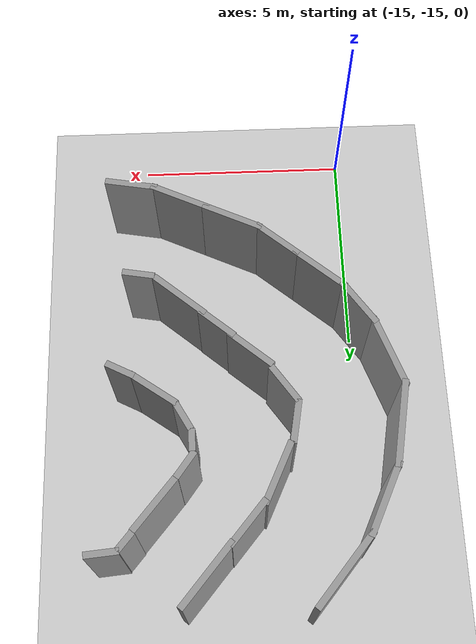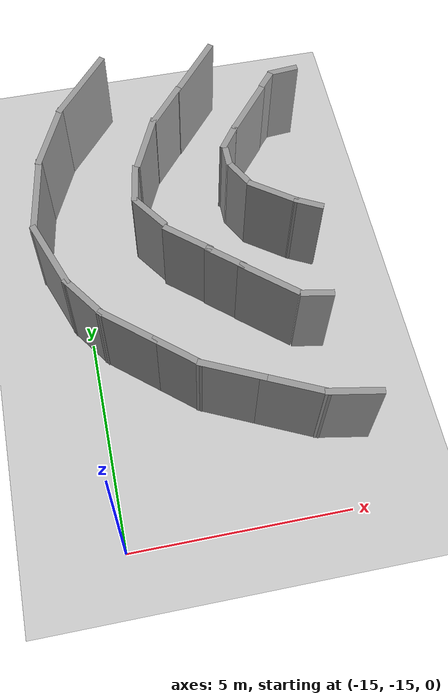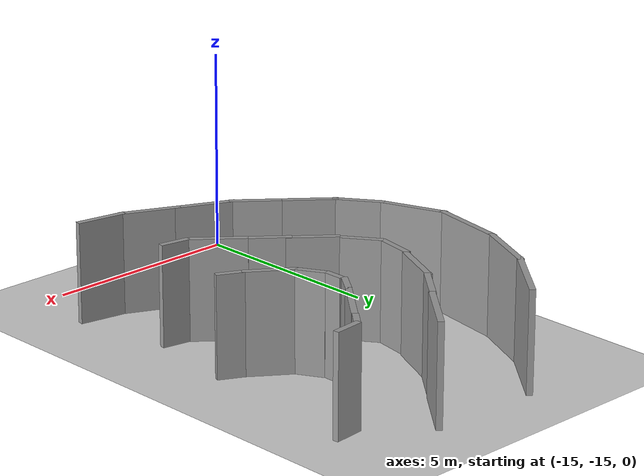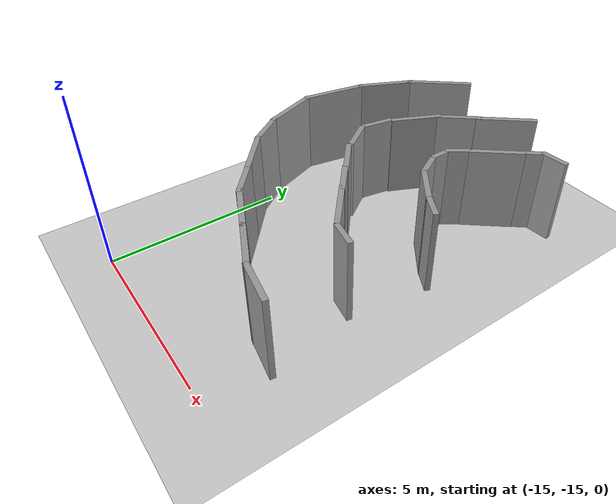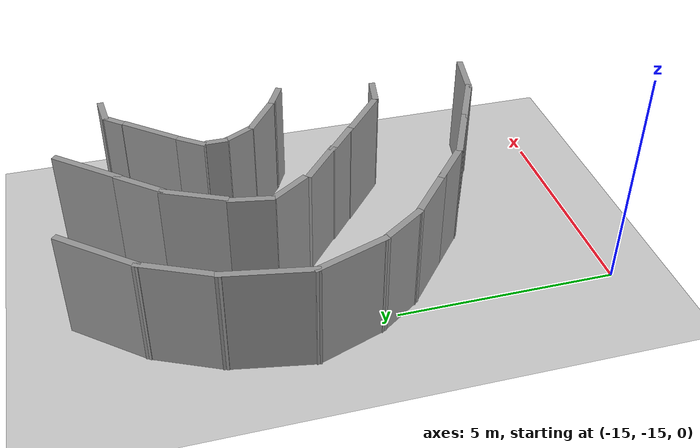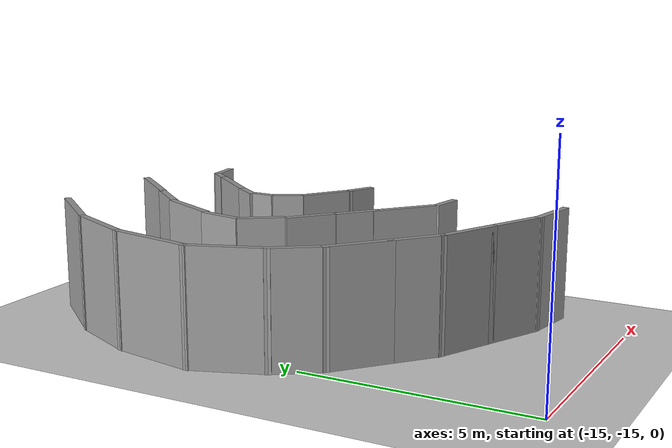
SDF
<sdf version="1.6">
 <world name="default">
  <model name="ground_plane">
   <static>1</static>
   <link name="link">
    <collision name="collision">
     <geometry><plane><normal>0 0 1</normal><size>100 100</size></plane></geometry>
     <surface><friction><ode><mu>100</mu><mu2>50</mu2></ode></friction></surface>
    </collision>
    <visual name="visual">
     <cast_shadows>0</cast_shadows>
     <geometry><plane><normal>0 0 1</normal><size>100 100</size></plane></geometry>
     <material>
      <script><uri>file://media/materials/scripts/gazebo.material</uri><name>Gazebo/Grey</name></script>
     </material>
    </visual>
   </link>
  </model>
  <model name="c-Snail_v3_clone">
   <link name="Wall_25">
    <pose>9.3253 -3.61638 0 0 -0 1.0472</pose>
    <visual name="Wall_25_Visual">
     <pose>0 0 1.25 0 -0 0</pose>
     <geometry><box><size>1.25 0.15 2.5</size></box></geometry>
     <material>
      <script><uri>file://media/materials/scripts/gazebo.material</uri><name>Gazebo/Grey</name></script>
      <ambient>1 1 1 1</ambient>
     </material>
     <meta><layer>0</layer></meta>
    </visual>
    <collision name="Wall_25_Collision">
     <pose>0 0 1.25 0 -0 0</pose>
     <geometry><box><size>1.25 0.15 2.5</size></box></geometry>
     <surface>
      <friction>
       <ode><mu>1</mu><mu2>1</mu2><fdir1>0 0 0</fdir1><slip1>0</slip1><slip2>0</slip2></ode>
       <torsional>
        <coefficient>1</coefficient>
        <patch_radius>0</patch_radius>
        <surface_radius>0</surface_radius>
        <use_patch_radius>1</use_patch_radius>
        <ode><slip>0</slip></ode>
       </torsional>
      </friction>
      <bounce><restitution_coefficient>0</restitution_coefficient><threshold>1e+06</threshold></bounce>
      <contact>
       <collide_without_contact>0</collide_without_contact>
       <collide_without_contact_bitmask>1</collide_without_contact_bitmask>
       <collide_bitmask>1</collide_bitmask>
       <ode>
        <soft_cfm>0</soft_cfm>
        <soft_erp>0.2</soft_erp>
        <kp>1e+13</kp>
        <kd>1</kd>
        <max_vel>0.01</max_vel>
        <min_depth>0</min_depth>
       </ode>
       <bullet>
        <split_impulse>1</split_impulse>
        <split_impulse_penetration_threshold>-0.01</split_impulse_penetration_threshold>
        <soft_cfm>0</soft_cfm>
        <soft_erp>0.2</soft_erp>
        <kp>1e+13</kp>
        <kd>1</kd>
       </bullet>
      </contact>
     </surface>
    </collision>
   </link>
   <link name="Wall_26">
    <pose>9.775 -2.48806 0 0 -0 1.309</pose>
    <visual name="Wall_26_Visual">
     <pose>0 0 1.25 0 -0 0</pose>
     <geometry><box><size>1.5 0.15 2.5</size></box></geometry>
     <material>
      <script><uri>file://media/materials/scripts/gazebo.material</uri><name>Gazebo/Grey</name></script>
      <ambient>1 1 1 1</ambient>
     </material>
     <meta><layer>0</layer></meta>
    </visual>
    <collision name="Wall_26_Collision">
     <pose>0 0 1.25 0 -0 0</pose>
     <geometry><box><size>1.5 0.15 2.5</size></box></geometry>
     <surface>
      <friction>
       <ode><mu>1</mu><mu2>1</mu2><fdir1>0 0 0</fdir1><slip1>0</slip1><slip2>0</slip2></ode>
       <torsional>
        <coefficient>1</coefficient>
        <patch_radius>0</patch_radius>
        <surface_radius>0</surface_radius>
        <use_patch_radius>1</use_patch_radius>
        <ode><slip>0</slip></ode>
       </torsional>
      </friction>
      <bounce><restitution_coefficient>0</restitution_coefficient><threshold>1e+06</threshold></bounce>
      <contact>
       <collide_without_contact>0</collide_without_contact>
       <collide_without_contact_bitmask>1</collide_without_contact_bitmask>
       <collide_bitmask>1</collide_bitmask>
       <ode>
        <soft_cfm>0</soft_cfm>
        <soft_erp>0.2</soft_erp>
        <kp>1e+13</kp>
        <kd>1</kd>
        <max_vel>0.01</max_vel>
        <min_depth>0</min_depth>
       </ode>
       <bullet>
        <split_impulse>1</split_impulse>
        <split_impulse_penetration_threshold>-0.01</split_impulse_penetration_threshold>
        <soft_cfm>0</soft_cfm>
        <soft_erp>0.2</soft_erp>
        <kp>1e+13</kp>
        <kd>1</kd>
       </bullet>
      </contact>
     </surface>
    </collision>
   </link>
   <link name="Wall_27">
    <pose>10.1244 -1.18406 0 0 -0 1.309</pose>
    <visual name="Wall_27_Visual">
     <pose>0 0 1.25 0 -0 0</pose>
     <geometry><box><size>1.5 0.15 2.5</size></box></geometry>
     <material>
      <script><uri>file://media/materials/scripts/gazebo.material</uri><name>Gazebo/Grey</name></script>
      <ambient>1 1 1 1</ambient>
     </material>
     <meta><layer>0</layer></meta>
    </visual>
    <collision name="Wall_27_Collision">
     <pose>0 0 1.25 0 -0 0</pose>
     <geometry><box><size>1.5 0.15 2.5</size></box></geometry>
     <surface>
      <friction>
       <ode><mu>1</mu><mu2>1</mu2><fdir1>0 0 0</fdir1><slip1>0</slip1><slip2>0</slip2></ode>
       <torsional>
        <coefficient>1</coefficient>
        <patch_radius>0</patch_radius>
        <surface_radius>0</surface_radius>
        <use_patch_radius>1</use_patch_radius>
        <ode><slip>0</slip></ode>
       </torsional>
      </friction>
      <bounce><restitution_coefficient>0</restitution_coefficient><threshold>1e+06</threshold></bounce>
      <contact>
       <collide_without_contact>0</collide_without_contact>
       <collide_without_contact_bitmask>1</collide_without_contact_bitmask>
       <collide_bitmask>1</collide_bitmask>
       <ode>
        <soft_cfm>0</soft_cfm>
        <soft_erp>0.2</soft_erp>
        <kp>1e+13</kp>
        <kd>1</kd>
        <max_vel>0.01</max_vel>
        <min_depth>0</min_depth>
       </ode>
       <bullet>
        <split_impulse>1</split_impulse>
        <split_impulse_penetration_threshold>-0.01</split_impulse_penetration_threshold>
        <soft_cfm>0</soft_cfm>
        <soft_erp>0.2</soft_erp>
        <kp>1e+13</kp>
        <kd>1</kd>
       </bullet>
      </contact>
     </surface>
    </collision>
   </link>
   <link name="Wall_28">
    <pose>10.2991 0.017937 0 0 -0 1.5708</pose>
    <visual name="Wall_28_Visual">
     <pose>0 0 1.25 0 -0 0</pose>
     <geometry><box><size>1.25 0.15 2.5</size></box></geometry>
     <material>
      <script><uri>file://media/materials/scripts/gazebo.material</uri><name>Gazebo/Grey</name></script>
      <ambient>1 1 1 1</ambient>
     </material>
     <meta><layer>0</layer></meta>
    </visual>
    <collision name="Wall_28_Collision">
     <pose>0 0 1.25 0 -0 0</pose>
     <geometry><box><size>1.25 0.15 2.5</size></box></geometry>
     <surface>
      <friction>
       <ode><mu>1</mu><mu2>1</mu2><fdir1>0 0 0</fdir1><slip1>0</slip1><slip2>0</slip2></ode>
       <torsional>
        <coefficient>1</coefficient>
        <patch_radius>0</patch_radius>
        <surface_radius>0</surface_radius>
        <use_patch_radius>1</use_patch_radius>
        <ode><slip>0</slip></ode>
       </torsional>
      </friction>
      <bounce><restitution_coefficient>0</restitution_coefficient><threshold>1e+06</threshold></bounce>
      <contact>
       <collide_without_contact>0</collide_without_contact>
       <collide_without_contact_bitmask>1</collide_without_contact_bitmask>
       <collide_bitmask>1</collide_bitmask>
       <ode>
        <soft_cfm>0</soft_cfm>
        <soft_erp>0.2</soft_erp>
        <kp>1e+13</kp>
        <kd>1</kd>
        <max_vel>0.01</max_vel>
        <min_depth>0</min_depth>
       </ode>
       <bullet>
        <split_impulse>1</split_impulse>
        <split_impulse_penetration_threshold>-0.01</split_impulse_penetration_threshold>
        <soft_cfm>0</soft_cfm>
        <soft_erp>0.2</soft_erp>
        <kp>1e+13</kp>
        <kd>1</kd>
       </bullet>
      </contact>
     </surface>
    </collision>
   </link>
   <link name="Wall_29">
    <pose>10.2991 1.24294 0 0 -0 1.5708</pose>
    <visual name="Wall_29_Visual">
     <pose>0 0 1.25 0 -0 0</pose>
     <geometry><box><size>1.5 0.15 2.5</size></box></geometry>
     <material>
      <script><uri>file://media/materials/scripts/gazebo.material</uri><name>Gazebo/Grey</name></script>
      <ambient>1 1 1 1</ambient>
     </material>
     <meta><layer>0</layer></meta>
    </visual>
    <collision name="Wall_29_Collision">
     <pose>0 0 1.25 0 -0 0</pose>
     <geometry><box><size>1.5 0.15 2.5</size></box></geometry>
     <surface>
      <friction>
       <ode><mu>1</mu><mu2>1</mu2><fdir1>0 0 0</fdir1><slip1>0</slip1><slip2>0</slip2></ode>
       <torsional>
        <coefficient>1</coefficient>
        <patch_radius>0</patch_radius>
        <surface_radius>0</surface_radius>
        <use_patch_radius>1</use_patch_radius>
        <ode><slip>0</slip></ode>
       </torsional>
      </friction>
      <bounce><restitution_coefficient>0</restitution_coefficient><threshold>1e+06</threshold></bounce>
      <contact>
       <collide_without_contact>0</collide_without_contact>
       <collide_without_contact_bitmask>1</collide_without_contact_bitmask>
       <collide_bitmask>1</collide_bitmask>
       <ode>
        <soft_cfm>0</soft_cfm>
        <soft_erp>0.2</soft_erp>
        <kp>1e+13</kp>
        <kd>1</kd>
        <max_vel>0.01</max_vel>
        <min_depth>0</min_depth>
       </ode>
       <bullet>
        <split_impulse>1</split_impulse>
        <split_impulse_penetration_threshold>-0.01</split_impulse_penetration_threshold>
        <soft_cfm>0</soft_cfm>
        <soft_erp>0.2</soft_erp>
        <kp>1e+13</kp>
        <kd>1</kd>
       </bullet>
      </contact>
     </surface>
    </collision>
   </link>
   <link name="Wall_30">
    <pose>10.1568 2.4492 0 0 -0 1.8326</pose>
    <visual name="Wall_30_Visual">
     <pose>0 0 1.25 0 -0 0</pose>
     <geometry><box><size>1.25 0.15 2.5</size></box></geometry>
     <material>
      <script><uri>file://media/materials/scripts/gazebo.material</uri><name>Gazebo/Grey</name></script>
      <ambient>1 1 1 1</ambient>
     </material>
     <meta><layer>0</layer></meta>
    </visual>
    <collision name="Wall_30_Collision">
     <pose>0 0 1.25 0 -0 0</pose>
     <geometry><box><size>1.25 0.15 2.5</size></box></geometry>
     <surface>
      <friction>
       <ode><mu>1</mu><mu2>1</mu2><fdir1>0 0 0</fdir1><slip1>0</slip1><slip2>0</slip2></ode>
       <torsional>
        <coefficient>1</coefficient>
        <patch_radius>0</patch_radius>
        <surface_radius>0</surface_radius>
        <use_patch_radius>1</use_patch_radius>
        <ode><slip>0</slip></ode>
       </torsional>
      </friction>
      <bounce><restitution_coefficient>0</restitution_coefficient><threshold>1e+06</threshold></bounce>
      <contact>
       <collide_without_contact>0</collide_without_contact>
       <collide_without_contact_bitmask>1</collide_without_contact_bitmask>
       <collide_bitmask>1</collide_bitmask>
       <ode>
        <soft_cfm>0</soft_cfm>
        <soft_erp>0.2</soft_erp>
        <kp>1e+13</kp>
        <kd>1</kd>
        <max_vel>0.01</max_vel>
        <min_depth>0</min_depth>
       </ode>
       <bullet>
        <split_impulse>1</split_impulse>
        <split_impulse_penetration_threshold>-0.01</split_impulse_penetration_threshold>
        <soft_cfm>0</soft_cfm>
        <soft_erp>0.2</soft_erp>
        <kp>1e+13</kp>
        <kd>1</kd>
       </bullet>
      </contact>
     </surface>
    </collision>
   </link>
   <link name="Wall_31">
    <pose>9.61441 3.67328 0 0 -0 2.0944</pose>
    <visual name="Wall_31_Visual">
     <pose>0 0 1.25 0 -0 0</pose>
     <geometry><box><size>1.75 0.15 2.5</size></box></geometry>
     <material>
      <script><uri>file://media/materials/scripts/gazebo.material</uri><name>Gazebo/Grey</name></script>
      <ambient>1 1 1 1</ambient>
     </material>
     <meta><layer>0</layer></meta>
    </visual>
    <collision name="Wall_31_Collision">
     <pose>0 0 1.25 0 -0 0</pose>
     <geometry><box><size>1.75 0.15 2.5</size></box></geometry>
     <surface>
      <friction>
       <ode><mu>1</mu><mu2>1</mu2><fdir1>0 0 0</fdir1><slip1>0</slip1><slip2>0</slip2></ode>
       <torsional>
        <coefficient>1</coefficient>
        <patch_radius>0</patch_radius>
        <surface_radius>0</surface_radius>
        <use_patch_radius>1</use_patch_radius>
        <ode><slip>0</slip></ode>
       </torsional>
      </friction>
      <bounce><restitution_coefficient>0</restitution_coefficient><threshold>1e+06</threshold></bounce>
      <contact>
       <collide_without_contact>0</collide_without_contact>
       <collide_without_contact_bitmask>1</collide_without_contact_bitmask>
       <collide_bitmask>1</collide_bitmask>
       <ode>
        <soft_cfm>0</soft_cfm>
        <soft_erp>0.2</soft_erp>
        <kp>1e+13</kp>
        <kd>1</kd>
        <max_vel>0.01</max_vel>
        <min_depth>0</min_depth>
       </ode>
       <bullet>
        <split_impulse>1</split_impulse>
        <split_impulse_penetration_threshold>-0.01</split_impulse_penetration_threshold>
        <soft_cfm>0</soft_cfm>
        <soft_erp>0.2</soft_erp>
        <kp>1e+13</kp>
        <kd>1</kd>
       </bullet>
      </contact>
     </surface>
    </collision>
   </link>
   <link name="Wall_32">
    <pose>8.41334 4.8286 0 0 -0 2.61799</pose>
    <visual name="Wall_32_Visual">
     <pose>0 0 1.25 0 -0 0</pose>
     <geometry><box><size>2 0.15 2.5</size></box></geometry>
     <material>
      <script><uri>file://media/materials/scripts/gazebo.material</uri><name>Gazebo/Grey</name></script>
      <ambient>1 1 1 1</ambient>
     </material>
     <meta><layer>0</layer></meta>
    </visual>
    <collision name="Wall_32_Collision">
     <pose>0 0 1.25 0 -0 0</pose>
     <geometry><box><size>2 0.15 2.5</size></box></geometry>
     <surface>
      <friction>
       <ode><mu>1</mu><mu2>1</mu2><fdir1>0 0 0</fdir1><slip1>0</slip1><slip2>0</slip2></ode>
       <torsional>
        <coefficient>1</coefficient>
        <patch_radius>0</patch_radius>
        <surface_radius>0</surface_radius>
        <use_patch_radius>1</use_patch_radius>
        <ode><slip>0</slip></ode>
       </torsional>
      </friction>
      <bounce><restitution_coefficient>0</restitution_coefficient><threshold>1e+06</threshold></bounce>
      <contact>
       <collide_without_contact>0</collide_without_contact>
       <collide_without_contact_bitmask>1</collide_without_contact_bitmask>
       <collide_bitmask>1</collide_bitmask>
       <ode>
        <soft_cfm>0</soft_cfm>
        <soft_erp>0.2</soft_erp>
        <kp>1e+13</kp>
        <kd>1</kd>
        <max_vel>0.01</max_vel>
        <min_depth>0</min_depth>
       </ode>
       <bullet>
        <split_impulse>1</split_impulse>
        <split_impulse_penetration_threshold>-0.01</split_impulse_penetration_threshold>
        <soft_cfm>0</soft_cfm>
        <soft_erp>0.2</soft_erp>
        <kp>1e+13</kp>
        <kd>1</kd>
       </bullet>
      </contact>
     </surface>
    </collision>
   </link>
   <link name="Wall_33">
    <pose>6.83952 5.49815 0 0 -0 2.87979</pose>
    <visual name="Wall_33_Visual">
     <pose>0 0 1.25 0 -0 0</pose>
     <geometry><box><size>1.75 0.15 2.5</size></box></geometry>
     <material>
      <script><uri>file://media/materials/scripts/gazebo.material</uri><name>Gazebo/Grey</name></script>
      <ambient>1 1 1 1</ambient>
     </material>
     <meta><layer>0</layer></meta>
    </visual>
    <collision name="Wall_33_Collision">
     <pose>0 0 1.25 0 -0 0</pose>
     <geometry><box><size>1.75 0.15 2.5</size></box></geometry>
     <surface>
      <friction>
       <ode><mu>1</mu><mu2>1</mu2><fdir1>0 0 0</fdir1><slip1>0</slip1><slip2>0</slip2></ode>
       <torsional>
        <coefficient>1</coefficient>
        <patch_radius>0</patch_radius>
        <surface_radius>0</surface_radius>
        <use_patch_radius>1</use_patch_radius>
        <ode><slip>0</slip></ode>
       </torsional>
      </friction>
      <bounce><restitution_coefficient>0</restitution_coefficient><threshold>1e+06</threshold></bounce>
      <contact>
       <collide_without_contact>0</collide_without_contact>
       <collide_without_contact_bitmask>1</collide_without_contact_bitmask>
       <collide_bitmask>1</collide_bitmask>
       <ode>
        <soft_cfm>0</soft_cfm>
        <soft_erp>0.2</soft_erp>
        <kp>1e+13</kp>
        <kd>1</kd>
        <max_vel>0.01</max_vel>
        <min_depth>0</min_depth>
       </ode>
       <bullet>
        <split_impulse>1</split_impulse>
        <split_impulse_penetration_threshold>-0.01</split_impulse_penetration_threshold>
        <soft_cfm>0</soft_cfm>
        <soft_erp>0.2</soft_erp>
        <kp>1e+13</kp>
        <kd>1</kd>
       </bullet>
      </contact>
     </surface>
    </collision>
   </link>
   <link name="Wall_34">
    <pose>5.14178 5.70521 0 0 -0 3.14159</pose>
    <visual name="Wall_34_Visual">
     <pose>0 0 1.25 0 -0 0</pose>
     <geometry><box><size>2 0.15 2.5</size></box></geometry>
     <material>
      <script><uri>file://media/materials/scripts/gazebo.material</uri><name>Gazebo/Grey</name></script>
      <ambient>1 1 1 1</ambient>
     </material>
     <meta><layer>0</layer></meta>
    </visual>
    <collision name="Wall_34_Collision">
     <pose>0 0 1.25 0 -0 0</pose>
     <geometry><box><size>2 0.15 2.5</size></box></geometry>
     <surface>
      <friction>
       <ode><mu>1</mu><mu2>1</mu2><fdir1>0 0 0</fdir1><slip1>0</slip1><slip2>0</slip2></ode>
       <torsional>
        <coefficient>1</coefficient>
        <patch_radius>0</patch_radius>
        <surface_radius>0</surface_radius>
        <use_patch_radius>1</use_patch_radius>
        <ode><slip>0</slip></ode>
       </torsional>
      </friction>
      <bounce><restitution_coefficient>0</restitution_coefficient><threshold>1e+06</threshold></bounce>
      <contact>
       <collide_without_contact>0</collide_without_contact>
       <collide_without_contact_bitmask>1</collide_without_contact_bitmask>
       <collide_bitmask>1</collide_bitmask>
       <ode>
        <soft_cfm>0</soft_cfm>
        <soft_erp>0.2</soft_erp>
        <kp>1e+13</kp>
        <kd>1</kd>
        <max_vel>0.01</max_vel>
        <min_depth>0</min_depth>
       </ode>
       <bullet>
        <split_impulse>1</split_impulse>
        <split_impulse_penetration_threshold>-0.01</split_impulse_penetration_threshold>
        <soft_cfm>0</soft_cfm>
        <soft_erp>0.2</soft_erp>
        <kp>1e+13</kp>
        <kd>1</kd>
       </bullet>
      </contact>
     </surface>
    </collision>
   </link>
   <link name="Wall_53">
    <pose>7.62419 -1.95298 0 0 -0 1.0472</pose>
    <visual name="Wall_53_Visual">
     <pose>0 0 1.25 0 -0 0</pose>
     <geometry><box><size>0.75 0.15 2.5</size></box></geometry>
     <material>
      <script><uri>file://media/materials/scripts/gazebo.material</uri><name>Gazebo/Grey</name></script>
      <ambient>1 1 1 1</ambient>
     </material>
     <meta><layer>0</layer></meta>
    </visual>
    <collision name="Wall_53_Collision">
     <pose>0 0 1.25 0 -0 0</pose>
     <geometry><box><size>0.75 0.15 2.5</size></box></geometry>
     <surface>
      <friction>
       <ode><mu>1</mu><mu2>1</mu2><fdir1>0 0 0</fdir1><slip1>0</slip1><slip2>0</slip2></ode>
       <torsional>
        <coefficient>1</coefficient>
        <patch_radius>0</patch_radius>
        <surface_radius>0</surface_radius>
        <use_patch_radius>1</use_patch_radius>
        <ode><slip>0</slip></ode>
       </torsional>
      </friction>
      <bounce><restitution_coefficient>0</restitution_coefficient><threshold>1e+06</threshold></bounce>
      <contact>
       <collide_without_contact>0</collide_without_contact>
       <collide_without_contact_bitmask>1</collide_without_contact_bitmask>
       <collide_bitmask>1</collide_bitmask>
       <ode>
        <soft_cfm>0</soft_cfm>
        <soft_erp>0.2</soft_erp>
        <kp>1e+13</kp>
        <kd>1</kd>
        <max_vel>0.01</max_vel>
        <min_depth>0</min_depth>
       </ode>
       <bullet>
        <split_impulse>1</split_impulse>
        <split_impulse_penetration_threshold>-0.01</split_impulse_penetration_threshold>
        <soft_cfm>0</soft_cfm>
        <soft_erp>0.2</soft_erp>
        <kp>1e+13</kp>
        <kd>1</kd>
       </bullet>
      </contact>
     </surface>
    </collision>
   </link>
   <link name="Wall_54">
    <pose>7.79615 -0.874793 0 0 -0 1.5708</pose>
    <visual name="Wall_54_Visual">
     <pose>0 0 1.25 0 -0 0</pose>
     <geometry><box><size>1.5 0.15 2.5</size></box></geometry>
     <material>
      <script><uri>file://media/materials/scripts/gazebo.material</uri><name>Gazebo/Grey</name></script>
      <ambient>1 1 1 1</ambient>
     </material>
     <meta><layer>0</layer></meta>
    </visual>
    <collision name="Wall_54_Collision">
     <pose>0 0 1.25 0 -0 0</pose>
     <geometry><box><size>1.5 0.15 2.5</size></box></geometry>
     <surface>
      <friction>
       <ode><mu>1</mu><mu2>1</mu2><fdir1>0 0 0</fdir1><slip1>0</slip1><slip2>0</slip2></ode>
       <torsional>
        <coefficient>1</coefficient>
        <patch_radius>0</patch_radius>
        <surface_radius>0</surface_radius>
        <use_patch_radius>1</use_patch_radius>
        <ode><slip>0</slip></ode>
       </torsional>
      </friction>
      <bounce><restitution_coefficient>0</restitution_coefficient><threshold>1e+06</threshold></bounce>
      <contact>
       <collide_without_contact>0</collide_without_contact>
       <collide_without_contact_bitmask>1</collide_without_contact_bitmask>
       <collide_bitmask>1</collide_bitmask>
       <ode>
        <soft_cfm>0</soft_cfm>
        <soft_erp>0.2</soft_erp>
        <kp>1e+13</kp>
        <kd>1</kd>
        <max_vel>0.01</max_vel>
        <min_depth>0</min_depth>
       </ode>
       <bullet>
        <split_impulse>1</split_impulse>
        <split_impulse_penetration_threshold>-0.01</split_impulse_penetration_threshold>
        <soft_cfm>0</soft_cfm>
        <soft_erp>0.2</soft_erp>
        <kp>1e+13</kp>
        <kd>1</kd>
       </bullet>
      </contact>
     </surface>
    </collision>
   </link>
   <link name="Wall_55">
    <pose>7.78252 0.225208 0 0 -0 1.5708</pose>
    <visual name="Wall_55_Visual">
     <pose>0 0 1.25 0 -0 0</pose>
     <geometry><box><size>1 0.15 2.5</size></box></geometry>
     <material>
      <script><uri>file://media/materials/scripts/gazebo.material</uri><name>Gazebo/Grey</name></script>
      <ambient>1 1 1 1</ambient>
     </material>
     <meta><layer>0</layer></meta>
    </visual>
    <collision name="Wall_55_Collision">
     <pose>0 0 1.25 0 -0 0</pose>
     <geometry><box><size>1 0.15 2.5</size></box></geometry>
     <surface>
      <friction>
       <ode><mu>1</mu><mu2>1</mu2><fdir1>0 0 0</fdir1><slip1>0</slip1><slip2>0</slip2></ode>
       <torsional>
        <coefficient>1</coefficient>
        <patch_radius>0</patch_radius>
        <surface_radius>0</surface_radius>
        <use_patch_radius>1</use_patch_radius>
        <ode><slip>0</slip></ode>
       </torsional>
      </friction>
      <bounce><restitution_coefficient>0</restitution_coefficient><threshold>1e+06</threshold></bounce>
      <contact>
       <collide_without_contact>0</collide_without_contact>
       <collide_without_contact_bitmask>1</collide_without_contact_bitmask>
       <collide_bitmask>1</collide_bitmask>
       <ode>
        <soft_cfm>0</soft_cfm>
        <soft_erp>0.2</soft_erp>
        <kp>1e+13</kp>
        <kd>1</kd>
        <max_vel>0.01</max_vel>
        <min_depth>0</min_depth>
       </ode>
       <bullet>
        <split_impulse>1</split_impulse>
        <split_impulse_penetration_threshold>-0.01</split_impulse_penetration_threshold>
        <soft_cfm>0</soft_cfm>
        <soft_erp>0.2</soft_erp>
        <kp>1e+13</kp>
        <kd>1</kd>
       </bullet>
      </contact>
     </surface>
    </collision>
   </link>
   <link name="Wall_56">
    <pose>7.75985 1.20021 0 0 -0 1.5708</pose>
    <visual name="Wall_56_Visual">
     <pose>0 0 1.25 0 -0 0</pose>
     <geometry><box><size>1.25 0.15 2.5</size></box></geometry>
     <material>
      <script><uri>file://media/materials/scripts/gazebo.material</uri><name>Gazebo/Grey</name></script>
      <ambient>1 1 1 1</ambient>
     </material>
     <meta><layer>0</layer></meta>
    </visual>
    <collision name="Wall_56_Collision">
     <pose>0 0 1.25 0 -0 0</pose>
     <geometry><box><size>1.25 0.15 2.5</size></box></geometry>
     <surface>
      <friction>
       <ode><mu>1</mu><mu2>1</mu2><fdir1>0 0 0</fdir1><slip1>0</slip1><slip2>0</slip2></ode>
       <torsional>
        <coefficient>1</coefficient>
        <patch_radius>0</patch_radius>
        <surface_radius>0</surface_radius>
        <use_patch_radius>1</use_patch_radius>
        <ode><slip>0</slip></ode>
       </torsional>
      </friction>
      <bounce><restitution_coefficient>0</restitution_coefficient><threshold>1e+06</threshold></bounce>
      <contact>
       <collide_without_contact>0</collide_without_contact>
       <collide_without_contact_bitmask>1</collide_without_contact_bitmask>
       <collide_bitmask>1</collide_bitmask>
       <ode>
        <soft_cfm>0</soft_cfm>
        <soft_erp>0.2</soft_erp>
        <kp>1e+13</kp>
        <kd>1</kd>
        <max_vel>0.01</max_vel>
        <min_depth>0</min_depth>
       </ode>
       <bullet>
        <split_impulse>1</split_impulse>
        <split_impulse_penetration_threshold>-0.01</split_impulse_penetration_threshold>
        <soft_cfm>0</soft_cfm>
        <soft_erp>0.2</soft_erp>
        <kp>1e+13</kp>
        <kd>1</kd>
       </bullet>
      </contact>
     </surface>
    </collision>
   </link>
   <link name="Wall_57">
    <pose>7.56918 2.29911 0 0 -0 1.8326</pose>
    <visual name="Wall_57_Visual">
     <pose>0 0 1.25 0 -0 0</pose>
     <geometry><box><size>1 0.15 2.5</size></box></geometry>
     <material>
      <script><uri>file://media/materials/scripts/gazebo.material</uri><name>Gazebo/Grey</name></script>
      <ambient>1 1 1 1</ambient>
     </material>
     <meta><layer>0</layer></meta>
    </visual>
    <collision name="Wall_57_Collision">
     <pose>0 0 1.25 0 -0 0</pose>
     <geometry><box><size>1 0.15 2.5</size></box></geometry>
     <surface>
      <friction>
       <ode><mu>1</mu><mu2>1</mu2><fdir1>0 0 0</fdir1><slip1>0</slip1><slip2>0</slip2></ode>
       <torsional>
        <coefficient>1</coefficient>
        <patch_radius>0</patch_radius>
        <surface_radius>0</surface_radius>
        <use_patch_radius>1</use_patch_radius>
        <ode><slip>0</slip></ode>
       </torsional>
      </friction>
      <bounce><restitution_coefficient>0</restitution_coefficient><threshold>1e+06</threshold></bounce>
      <contact>
       <collide_without_contact>0</collide_without_contact>
       <collide_without_contact_bitmask>1</collide_without_contact_bitmask>
       <collide_bitmask>1</collide_bitmask>
       <ode>
        <soft_cfm>0</soft_cfm>
        <soft_erp>0.2</soft_erp>
        <kp>1e+13</kp>
        <kd>1</kd>
        <max_vel>0.01</max_vel>
        <min_depth>0</min_depth>
       </ode>
       <bullet>
        <split_impulse>1</split_impulse>
        <split_impulse_penetration_threshold>-0.01</split_impulse_penetration_threshold>
        <soft_cfm>0</soft_cfm>
        <soft_erp>0.2</soft_erp>
        <kp>1e+13</kp>
        <kd>1</kd>
       </bullet>
      </contact>
     </surface>
    </collision>
   </link>
   <link name="Wall_58">
    <pose>7.036 3.00803 0 0 -0 2.61799</pose>
    <visual name="Wall_58_Visual">
     <pose>0 0 1.25 0 -0 0</pose>
     <geometry><box><size>1 0.15 2.5</size></box></geometry>
     <material>
      <script><uri>file://media/materials/scripts/gazebo.material</uri><name>Gazebo/Grey</name></script>
      <ambient>1 1 1 1</ambient>
     </material>
     <meta><layer>0</layer></meta>
    </visual>
    <collision name="Wall_58_Collision">
     <pose>0 0 1.25 0 -0 0</pose>
     <geometry><box><size>1 0.15 2.5</size></box></geometry>
     <surface>
      <friction>
       <ode><mu>1</mu><mu2>1</mu2><fdir1>0 0 0</fdir1><slip1>0</slip1><slip2>0</slip2></ode>
       <torsional>
        <coefficient>1</coefficient>
        <patch_radius>0</patch_radius>
        <surface_radius>0</surface_radius>
        <use_patch_radius>1</use_patch_radius>
        <ode><slip>0</slip></ode>
       </torsional>
      </friction>
      <bounce><restitution_coefficient>0</restitution_coefficient><threshold>1e+06</threshold></bounce>
      <contact>
       <collide_without_contact>0</collide_without_contact>
       <collide_without_contact_bitmask>1</collide_without_contact_bitmask>
       <collide_bitmask>1</collide_bitmask>
       <ode>
        <soft_cfm>0</soft_cfm>
        <soft_erp>0.2</soft_erp>
        <kp>1e+13</kp>
        <kd>1</kd>
        <max_vel>0.01</max_vel>
        <min_depth>0</min_depth>
       </ode>
       <bullet>
        <split_impulse>1</split_impulse>
        <split_impulse_penetration_threshold>-0.01</split_impulse_penetration_threshold>
        <soft_cfm>0</soft_cfm>
        <soft_erp>0.2</soft_erp>
        <kp>1e+13</kp>
        <kd>1</kd>
       </bullet>
      </contact>
     </surface>
    </collision>
   </link>
   <link name="Wall_59">
    <pose>5.90215 3.39004 0 0 -0 2.87979</pose>
    <visual name="Wall_59_Visual">
     <pose>0 0 1.25 0 -0 0</pose>
     <geometry><box><size>1.5 0.15 2.5</size></box></geometry>
     <material>
      <script><uri>file://media/materials/scripts/gazebo.material</uri><name>Gazebo/Grey</name></script>
      <ambient>1 1 1 1</ambient>
     </material>
     <meta><layer>0</layer></meta>
    </visual>
    <collision name="Wall_59_Collision">
     <pose>0 0 1.25 0 -0 0</pose>
     <geometry><box><size>1.5 0.15 2.5</size></box></geometry>
     <surface>
      <friction>
       <ode><mu>1</mu><mu2>1</mu2><fdir1>0 0 0</fdir1><slip1>0</slip1><slip2>0</slip2></ode>
       <torsional>
        <coefficient>1</coefficient>
        <patch_radius>0</patch_radius>
        <surface_radius>0</surface_radius>
        <use_patch_radius>1</use_patch_radius>
        <ode><slip>0</slip></ode>
       </torsional>
      </friction>
      <bounce><restitution_coefficient>0</restitution_coefficient><threshold>1e+06</threshold></bounce>
      <contact>
       <collide_without_contact>0</collide_without_contact>
       <collide_without_contact_bitmask>1</collide_without_contact_bitmask>
       <collide_bitmask>1</collide_bitmask>
       <ode>
        <soft_cfm>0</soft_cfm>
        <soft_erp>0.2</soft_erp>
        <kp>1e+13</kp>
        <kd>1</kd>
        <max_vel>0.01</max_vel>
        <min_depth>0</min_depth>
       </ode>
       <bullet>
        <split_impulse>1</split_impulse>
        <split_impulse_penetration_threshold>-0.01</split_impulse_penetration_threshold>
        <soft_cfm>0</soft_cfm>
        <soft_erp>0.2</soft_erp>
        <kp>1e+13</kp>
        <kd>1</kd>
       </bullet>
      </contact>
     </surface>
    </collision>
   </link>
   <link name="Wall_60">
    <pose>4.67122 3.53706 0 0 -0 3.14159</pose>
    <visual name="Wall_60_Visual">
     <pose>0 0 1.25 0 -0 0</pose>
     <geometry><box><size>1.25 0.15 2.5</size></box></geometry>
     <material>
      <script><uri>file://media/materials/scripts/gazebo.material</uri><name>Gazebo/Grey</name></script>
      <ambient>1 1 1 1</ambient>
     </material>
     <meta><layer>0</layer></meta>
    </visual>
    <collision name="Wall_60_Collision">
     <pose>0 0 1.25 0 -0 0</pose>
     <geometry><box><size>1.25 0.15 2.5</size></box></geometry>
     <surface>
      <friction>
       <ode><mu>1</mu><mu2>1</mu2><fdir1>0 0 0</fdir1><slip1>0</slip1><slip2>0</slip2></ode>
       <torsional>
        <coefficient>1</coefficient>
        <patch_radius>0</patch_radius>
        <surface_radius>0</surface_radius>
        <use_patch_radius>1</use_patch_radius>
        <ode><slip>0</slip></ode>
       </torsional>
      </friction>
      <bounce><restitution_coefficient>0</restitution_coefficient><threshold>1e+06</threshold></bounce>
      <contact>
       <collide_without_contact>0</collide_without_contact>
       <collide_without_contact_bitmask>1</collide_without_contact_bitmask>
       <collide_bitmask>1</collide_bitmask>
       <ode>
        <soft_cfm>0</soft_cfm>
        <soft_erp>0.2</soft_erp>
        <kp>1e+13</kp>
        <kd>1</kd>
        <max_vel>0.01</max_vel>
        <min_depth>0</min_depth>
       </ode>
       <bullet>
        <split_impulse>1</split_impulse>
        <split_impulse_penetration_threshold>-0.01</split_impulse_penetration_threshold>
        <soft_cfm>0</soft_cfm>
        <soft_erp>0.2</soft_erp>
        <kp>1e+13</kp>
        <kd>1</kd>
       </bullet>
      </contact>
     </surface>
    </collision>
   </link>
   <link name="Wall_61">
    <pose>3.31404 3.52063 0 0 -0 3.14159</pose>
    <visual name="Wall_61_Visual">
     <pose>0 0 1.25 0 -0 0</pose>
     <geometry><box><size>1.75 0.15 2.5</size></box></geometry>
     <material>
      <script><uri>file://media/materials/scripts/gazebo.material</uri><name>Gazebo/Grey</name></script>
      <ambient>1 1 1 1</ambient>
     </material>
     <meta><layer>0</layer></meta>
    </visual>
    <collision name="Wall_61_Collision">
     <pose>0 0 1.25 0 -0 0</pose>
     <geometry><box><size>1.75 0.15 2.5</size></box></geometry>
     <surface>
      <friction>
       <ode><mu>1</mu><mu2>1</mu2><fdir1>0 0 0</fdir1><slip1>0</slip1><slip2>0</slip2></ode>
       <torsional>
        <coefficient>1</coefficient>
        <patch_radius>0</patch_radius>
        <surface_radius>0</surface_radius>
        <use_patch_radius>1</use_patch_radius>
        <ode><slip>0</slip></ode>
       </torsional>
      </friction>
      <bounce><restitution_coefficient>0</restitution_coefficient><threshold>1e+06</threshold></bounce>
      <contact>
       <collide_without_contact>0</collide_without_contact>
       <collide_without_contact_bitmask>1</collide_without_contact_bitmask>
       <collide_bitmask>1</collide_bitmask>
       <ode>
        <soft_cfm>0</soft_cfm>
        <soft_erp>0.2</soft_erp>
        <kp>1e+13</kp>
        <kd>1</kd>
        <max_vel>0.01</max_vel>
        <min_depth>0</min_depth>
       </ode>
       <bullet>
        <split_impulse>1</split_impulse>
        <split_impulse_penetration_threshold>-0.01</split_impulse_penetration_threshold>
        <soft_cfm>0</soft_cfm>
        <soft_erp>0.2</soft_erp>
        <kp>1e+13</kp>
        <kd>1</kd>
       </bullet>
      </contact>
     </surface>
    </collision>
   </link>
   <link name="Wall_71_clone">
    <pose>3.78048 1.74575 0 0 -0 3.13791</pose>
    <visual name="Wall_71_Visual">
     <pose>0 0 1.25 0 -0 0</pose>
     <geometry><box><size>1.5 0.15 2.5</size></box></geometry>
     <material>
      <script><uri>file://media/materials/scripts/gazebo.material</uri><name>Gazebo/Grey</name></script>
      <ambient>1 1 1 1</ambient>
      <shader type="pixel"/>
     </material>
     <meta><layer>0</layer></meta>
    </visual>
    <collision name="Wall_71_Collision">
     <pose>0 0 1.25 0 -0 0</pose>
     <geometry><box><size>1.5 0.15 2.5</size></box></geometry>
     <surface>
      <friction>
       <ode><mu>1</mu><mu2>1</mu2><fdir1>0 0 0</fdir1><slip1>0</slip1><slip2>0</slip2></ode>
       <torsional>
        <coefficient>1</coefficient>
        <patch_radius>0</patch_radius>
        <surface_radius>0</surface_radius>
        <use_patch_radius>1</use_patch_radius>
        <ode><slip>0</slip></ode>
       </torsional>
      </friction>
      <bounce><restitution_coefficient>0</restitution_coefficient><threshold>1e+06</threshold></bounce>
      <contact>
       <collide_without_contact>0</collide_without_contact>
       <collide_without_contact_bitmask>1</collide_without_contact_bitmask>
       <collide_bitmask>1</collide_bitmask>
       <ode>
        <soft_cfm>0</soft_cfm>
        <soft_erp>0.2</soft_erp>
        <kp>1e+13</kp>
        <kd>1</kd>
        <max_vel>0.01</max_vel>
        <min_depth>0</min_depth>
       </ode>
       <bullet>
        <split_impulse>1</split_impulse>
        <split_impulse_penetration_threshold>-0.01</split_impulse_penetration_threshold>
        <soft_cfm>0</soft_cfm>
        <soft_erp>0.2</soft_erp>
        <kp>1e+13</kp>
        <kd>1</kd>
       </bullet>
      </contact>
     </surface>
    </collision>
   </link>
   <link name="Wall_72_clone">
    <pose>5.70761 0.097339 0 0 0 -1.65202</pose>
    <visual name="Wall_72_Visual">
     <pose>0 0 1.25 0 -0 0</pose>
     <geometry><box><size>1.25 0.15 2.5</size></box></geometry>
     <material>
      <script><uri>file://media/materials/scripts/gazebo.material</uri><name>Gazebo/Grey</name></script>
      <ambient>1 1 1 1</ambient>
      <shader type="pixel"/>
     </material>
     <meta><layer>0</layer></meta>
    </visual>
    <collision name="Wall_72_Collision">
     <pose>0 0 1.25 0 -0 0</pose>
     <geometry><box><size>1.25 0.15 2.5</size></box></geometry>
     <surface>
      <friction>
       <ode><mu>1</mu><mu2>1</mu2><fdir1>0 0 0</fdir1><slip1>0</slip1><slip2>0</slip2></ode>
       <torsional>
        <coefficient>1</coefficient>
        <patch_radius>0</patch_radius>
        <surface_radius>0</surface_radius>
        <use_patch_radius>1</use_patch_radius>
        <ode><slip>0</slip></ode>
       </torsional>
      </friction>
      <bounce><restitution_coefficient>0</restitution_coefficient><threshold>1e+06</threshold></bounce>
      <contact>
       <collide_without_contact>0</collide_without_contact>
       <collide_without_contact_bitmask>1</collide_without_contact_bitmask>
       <collide_bitmask>1</collide_bitmask>
       <ode>
        <soft_cfm>0</soft_cfm>
        <soft_erp>0.2</soft_erp>
        <kp>1e+13</kp>
        <kd>1</kd>
        <max_vel>0.01</max_vel>
        <min_depth>0</min_depth>
       </ode>
       <bullet>
        <split_impulse>1</split_impulse>
        <split_impulse_penetration_threshold>-0.01</split_impulse_penetration_threshold>
        <soft_cfm>0</soft_cfm>
        <soft_erp>0.2</soft_erp>
        <kp>1e+13</kp>
        <kd>1</kd>
       </bullet>
      </contact>
     </surface>
    </collision>
   </link>
   <link name="Wall_73_clone">
    <pose>5.59262 -0.765538 0 0 0 -1.79294</pose>
    <visual name="Wall_73_Visual">
     <pose>0 0 1.25 0 -0 0</pose>
     <geometry><box><size>0.701928 0.15 2.5</size></box></geometry>
     <material>
      <script><uri>file://media/materials/scripts/gazebo.material</uri><name>Gazebo/Grey</name></script>
      <ambient>1 1 1 1</ambient>
      <shader type="pixel"/>
     </material>
     <meta><layer>0</layer></meta>
    </visual>
    <collision name="Wall_73_Collision">
     <pose>0 0 1.25 0 -0 0</pose>
     <geometry><box><size>0.701928 0.15 2.5</size></box></geometry>
     <surface>
      <friction>
       <ode><mu>1</mu><mu2>1</mu2><fdir1>0 0 0</fdir1><slip1>0</slip1><slip2>0</slip2></ode>
       <torsional>
        <coefficient>1</coefficient>
        <patch_radius>0</patch_radius>
        <surface_radius>0</surface_radius>
        <use_patch_radius>1</use_patch_radius>
        <ode><slip>0</slip></ode>
       </torsional>
      </friction>
      <bounce><restitution_coefficient>0</restitution_coefficient><threshold>1e+06</threshold></bounce>
      <contact>
       <collide_without_contact>0</collide_without_contact>
       <collide_without_contact_bitmask>1</collide_without_contact_bitmask>
       <collide_bitmask>1</collide_bitmask>
       <ode>
        <soft_cfm>0</soft_cfm>
        <soft_erp>0.2</soft_erp>
        <kp>1e+13</kp>
        <kd>1</kd>
        <max_vel>0.01</max_vel>
        <min_depth>0</min_depth>
       </ode>
       <bullet>
        <split_impulse>1</split_impulse>
        <split_impulse_penetration_threshold>-0.01</split_impulse_penetration_threshold>
        <soft_cfm>0</soft_cfm>
        <soft_erp>0.2</soft_erp>
        <kp>1e+13</kp>
        <kd>1</kd>
       </bullet>
      </contact>
     </surface>
    </collision>
   </link>
   <link name="Wall_73_clone_clone">
    <pose>5.62294 1.00373 0 0 -0 1.94012</pose>
    <visual name="Wall_73_Visual">
     <pose>0 0 1.25 0 -0 0</pose>
     <geometry><box><size>0.701928 0.15 2.5</size></box></geometry>
     <material>
      <script><uri>file://media/materials/scripts/gazebo.material</uri><name>Gazebo/Grey</name></script>
      <ambient>1 1 1 1</ambient>
      <shader type="pixel"/>
     </material>
     <meta><layer>0</layer></meta>
    </visual>
    <collision name="Wall_73_Collision">
     <pose>0 0 1.25 0 -0 0</pose>
     <geometry><box><size>0.701928 0.15 2.5</size></box></geometry>
     <surface>
      <friction>
       <ode><mu>1</mu><mu2>1</mu2><fdir1>0 0 0</fdir1><slip1>0</slip1><slip2>0</slip2></ode>
       <torsional>
        <coefficient>1</coefficient>
        <patch_radius>0</patch_radius>
        <surface_radius>0</surface_radius>
        <use_patch_radius>1</use_patch_radius>
        <ode><slip>0</slip></ode>
       </torsional>
      </friction>
      <bounce><restitution_coefficient>0</restitution_coefficient><threshold>1e+06</threshold></bounce>
      <contact>
       <collide_without_contact>0</collide_without_contact>
       <collide_without_contact_bitmask>1</collide_without_contact_bitmask>
       <collide_bitmask>1</collide_bitmask>
       <ode>
        <soft_cfm>0</soft_cfm>
        <soft_erp>0.2</soft_erp>
        <kp>1e+13</kp>
        <kd>1</kd>
        <max_vel>0.01</max_vel>
        <min_depth>0</min_depth>
       </ode>
       <bullet>
        <split_impulse>1</split_impulse>
        <split_impulse_penetration_threshold>-0.01</split_impulse_penetration_threshold>
        <soft_cfm>0</soft_cfm>
        <soft_erp>0.2</soft_erp>
        <kp>1e+13</kp>
        <kd>1</kd>
       </bullet>
      </contact>
     </surface>
    </collision>
   </link>
   <link name="Wall_73_clone_clone_clone">
    <pose>4.81951 1.72477 0 0 0 -0.06667</pose>
    <visual name="Wall_73_Visual">
     <pose>0 0 1.25 0 -0 0</pose>
     <geometry><box><size>0.701928 0.15 2.5</size></box></geometry>
     <material>
      <script><uri>file://media/materials/scripts/gazebo.material</uri><name>Gazebo/Grey</name></script>
      <ambient>1 1 1 1</ambient>
      <shader type="pixel"/>
     </material>
     <meta><layer>0</layer></meta>
    </visual>
    <collision name="Wall_73_Collision">
     <pose>0 0 1.25 0 -0 0</pose>
     <geometry><box><size>0.701928 0.15 2.5</size></box></geometry>
     <surface>
      <friction>
       <ode><mu>1</mu><mu2>1</mu2><fdir1>0 0 0</fdir1><slip1>0</slip1><slip2>0</slip2></ode>
       <torsional>
        <coefficient>1</coefficient>
        <patch_radius>0</patch_radius>
        <surface_radius>0</surface_radius>
        <use_patch_radius>1</use_patch_radius>
        <ode><slip>0</slip></ode>
       </torsional>
      </friction>
      <bounce><restitution_coefficient>0</restitution_coefficient><threshold>1e+06</threshold></bounce>
      <contact>
       <collide_without_contact>0</collide_without_contact>
       <collide_without_contact_bitmask>1</collide_without_contact_bitmask>
       <collide_bitmask>1</collide_bitmask>
       <ode>
        <soft_cfm>0</soft_cfm>
        <soft_erp>0.2</soft_erp>
        <kp>1e+13</kp>
        <kd>1</kd>
        <max_vel>0.01</max_vel>
        <min_depth>0</min_depth>
       </ode>
       <bullet>
        <split_impulse>1</split_impulse>
        <split_impulse_penetration_threshold>-0.01</split_impulse_penetration_threshold>
        <soft_cfm>0</soft_cfm>
        <soft_erp>0.2</soft_erp>
        <kp>1e+13</kp>
        <kd>1</kd>
       </bullet>
      </contact>
     </surface>
    </collision>
   </link>
   <link name="Wall_74">
    <pose>5.32652 1.49493 0 0 -0 2.43922</pose>
    <visual name="Wall_74_Visual">
     <pose>0 0 1.25 0 -0 0</pose>
     <geometry><box><size>0.5 0.15 2.5</size></box></geometry>
     <material>
      <script><uri>file://media/materials/scripts/gazebo.material</uri><name>Gazebo/Grey</name></script>
      <ambient>1 1 1 1</ambient>
     </material>
     <meta><layer>0</layer></meta>
    </visual>
    <collision name="Wall_74_Collision">
     <pose>0 0 1.25 0 -0 0</pose>
     <geometry><box><size>0.5 0.15 2.5</size></box></geometry>
     <surface>
      <friction>
       <ode><mu>1</mu><mu2>1</mu2><fdir1>0 0 0</fdir1><slip1>0</slip1><slip2>0</slip2></ode>
       <torsional>
        <coefficient>1</coefficient>
        <patch_radius>0</patch_radius>
        <surface_radius>0</surface_radius>
        <use_patch_radius>1</use_patch_radius>
        <ode><slip>0</slip></ode>
       </torsional>
      </friction>
      <bounce><restitution_coefficient>0</restitution_coefficient><threshold>1e+06</threshold></bounce>
      <contact>
       <collide_without_contact>0</collide_without_contact>
       <collide_without_contact_bitmask>1</collide_without_contact_bitmask>
       <collide_bitmask>1</collide_bitmask>
       <ode>
        <soft_cfm>0</soft_cfm>
        <soft_erp>0.2</soft_erp>
        <kp>1e+13</kp>
        <kd>1</kd>
        <max_vel>0.01</max_vel>
        <min_depth>0</min_depth>
       </ode>
       <bullet>
        <split_impulse>1</split_impulse>
        <split_impulse_penetration_threshold>-0.01</split_impulse_penetration_threshold>
        <soft_cfm>0</soft_cfm>
        <soft_erp>0.2</soft_erp>
        <kp>1e+13</kp>
        <kd>1</kd>
       </bullet>
      </contact>
     </surface>
    </collision>
   </link>
   <link name="Wall_84">
    <pose>2.7913 1.76389 0 0 -0 3.14159</pose>
    <visual name="Wall_84_Visual">
     <pose>0 0 1.25 0 -0 0</pose>
     <geometry><box><size>0.5 0.15 2.5</size></box></geometry>
     <material>
      <script><uri>file://media/materials/scripts/gazebo.material</uri><name>Gazebo/Grey</name></script>
      <ambient>1 1 1 1</ambient>
     </material>
     <meta><layer>0</layer></meta>
    </visual>
    <collision name="Wall_84_Collision">
     <pose>0 0 1.25 0 -0 0</pose>
     <geometry><box><size>0.5 0.15 2.5</size></box></geometry>
     <surface>
      <friction>
       <ode><mu>1</mu><mu2>1</mu2><fdir1>0 0 0</fdir1><slip1>0</slip1><slip2>0</slip2></ode>
       <torsional>
        <coefficient>1</coefficient>
        <patch_radius>0</patch_radius>
        <surface_radius>0</surface_radius>
        <use_patch_radius>1</use_patch_radius>
        <ode><slip>0</slip></ode>
       </torsional>
      </friction>
      <bounce><restitution_coefficient>0</restitution_coefficient><threshold>1e+06</threshold></bounce>
      <contact>
       <collide_without_contact>0</collide_without_contact>
       <collide_without_contact_bitmask>1</collide_without_contact_bitmask>
       <collide_bitmask>1</collide_bitmask>
       <ode>
        <soft_cfm>0</soft_cfm>
        <soft_erp>0.2</soft_erp>
        <kp>1e+13</kp>
        <kd>1</kd>
        <max_vel>0.01</max_vel>
        <min_depth>0</min_depth>
       </ode>
       <bullet>
        <split_impulse>1</split_impulse>
        <split_impulse_penetration_threshold>-0.01</split_impulse_penetration_threshold>
        <soft_cfm>0</soft_cfm>
        <soft_erp>0.2</soft_erp>
        <kp>1e+13</kp>
        <kd>1</kd>
       </bullet>
      </contact>
     </surface>
    </collision>
   </link>
   <link name="Wall_86">
    <pose>2.31049 1.53977 0 0 0 -2.35619</pose>
    <visual name="Wall_86_Visual">
     <pose>0 0 1.25 0 -0 0</pose>
     <geometry><box><size>0.75 0.15 2.5</size></box></geometry>
     <material>
      <script><uri>file://media/materials/scripts/gazebo.material</uri><name>Gazebo/Grey</name></script>
      <ambient>1 1 1 1</ambient>
     </material>
     <meta><layer>0</layer></meta>
    </visual>
    <collision name="Wall_86_Collision">
     <pose>0 0 1.25 0 -0 0</pose>
     <geometry><box><size>0.75 0.15 2.5</size></box></geometry>
     <surface>
      <friction>
       <ode><mu>1</mu><mu2>1</mu2><fdir1>0 0 0</fdir1><slip1>0</slip1><slip2>0</slip2></ode>
       <torsional>
        <coefficient>1</coefficient>
        <patch_radius>0</patch_radius>
        <surface_radius>0</surface_radius>
        <use_patch_radius>1</use_patch_radius>
        <ode><slip>0</slip></ode>
       </torsional>
      </friction>
      <bounce><restitution_coefficient>0</restitution_coefficient><threshold>1e+06</threshold></bounce>
      <contact>
       <collide_without_contact>0</collide_without_contact>
       <collide_without_contact_bitmask>1</collide_without_contact_bitmask>
       <collide_bitmask>1</collide_bitmask>
       <ode>
        <soft_cfm>0</soft_cfm>
        <soft_erp>0.2</soft_erp>
        <kp>1e+13</kp>
        <kd>1</kd>
        <max_vel>0.01</max_vel>
        <min_depth>0</min_depth>
       </ode>
       <bullet>
        <split_impulse>1</split_impulse>
        <split_impulse_penetration_threshold>-0.01</split_impulse_penetration_threshold>
        <soft_cfm>0</soft_cfm>
        <soft_erp>0.2</soft_erp>
        <kp>1e+13</kp>
        <kd>1</kd>
       </bullet>
      </contact>
     </surface>
    </collision>
   </link>
   <static>1</static>
   <pose>-6.58324 -3.80514 2.49855 3.14058 0.001205 -2.26984</pose>
  </model>
 </world>
</sdf>
